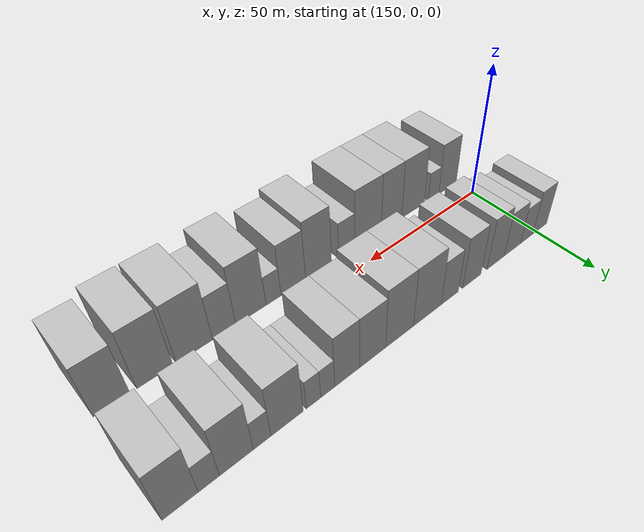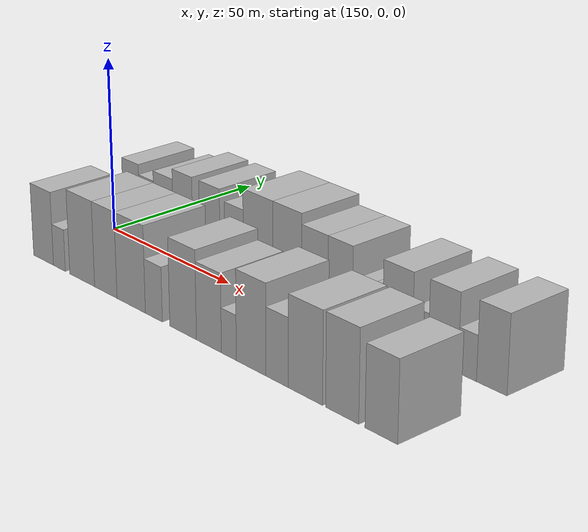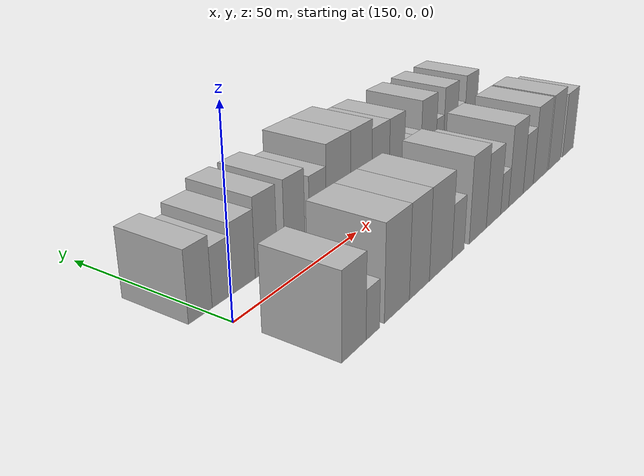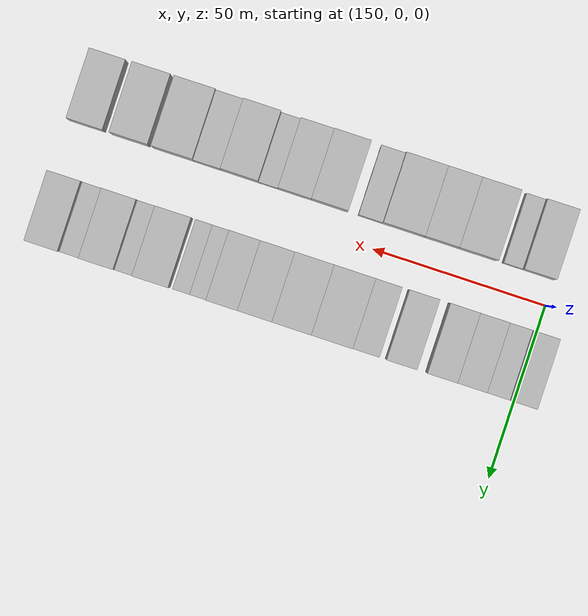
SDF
<sdf version="1.6">
 <world name="default">
  <model name="building_14">
   <static>1</static>
   <pose>148.1029 17.5000 0 0.000000 0.000000 1.570796</pose>
   <link name="link">
    <pose>0 0 9.00 0 0 0</pose>
    <collision name="collision"><geometry><box><size>20.0000 7.6957 18.0000</size></box></geometry></collision>
    <visual name="visual">
     <cast_shadows>0</cast_shadows>
     <geometry><box><size>20.0000 7.6957 18.0000</size></box></geometry>
     <material>
      <script>
       <uri>model://HANNAS_wall/materials/scripts</uri>
       <uri>model://HANNAS_wall/materials/textures</uri>
       <name>vrc/HANNAS_wall</name>
      </script>
     </material>
    </visual>
   </link>
  </model>
  <model name="building_15">
   <static>1</static>
   <pose>155.2797 17.5000 0 0.000000 0.000000 1.570796</pose>
   <link name="link">
    <pose>0 0 7.50 0 0 0</pose>
    <collision name="collision"><geometry><box><size>20.0000 6.6581 15.0000</size></box></geometry></collision>
    <visual name="visual">
     <cast_shadows>0</cast_shadows>
     <geometry><box><size>20.0000 6.6581 15.0000</size></box></geometry>
     <material>
      <script>
       <uri>model://HANNAS_wall/materials/scripts</uri>
       <uri>model://HANNAS_wall/materials/textures</uri>
       <name>vrc/HANNAS_wall</name>
      </script>
     </material>
    </visual>
   </link>
  </model>
  <model name="building_16">
   <static>1</static>
   <pose>162.8929 17.5000 0 0.000000 0.000000 1.570796</pose>
   <link name="link">
    <pose>0 0 9.00 0 0 0</pose>
    <collision name="collision"><geometry><box><size>20.0000 8.5683 18.0000</size></box></geometry></collision>
    <visual name="visual">
     <cast_shadows>0</cast_shadows>
     <geometry><box><size>20.0000 8.5683 18.0000</size></box></geometry>
     <material>
      <script>
       <uri>model://HANNAS_wall/materials/scripts</uri>
       <uri>model://HANNAS_wall/materials/textures</uri>
       <name>vrc/HANNAS_wall</name>
      </script>
     </material>
    </visual>
   </link>
  </model>
  <model name="building_17">
   <static>1</static>
   <pose>171.4461 17.5000 0 0.000000 0.000000 1.570796</pose>
   <link name="link">
    <pose>0 0 10.50 0 0 0</pose>
    <collision name="collision"><geometry><box><size>20.0000 8.5381 21.0000</size></box></geometry></collision>
    <visual name="visual">
     <cast_shadows>0</cast_shadows>
     <geometry><box><size>20.0000 8.5381 21.0000</size></box></geometry>
     <material>
      <script>
       <uri>model://HANNAS_wall/materials/scripts</uri>
       <uri>model://HANNAS_wall/materials/textures</uri>
       <name>vrc/HANNAS_wall</name>
      </script>
     </material>
    </visual>
   </link>
  </model>
  <model name="building_18">
   <static>1</static>
   <pose>183.0365 17.5000 0 0.000000 0.000000 1.570796</pose>
   <link name="link">
    <pose>0 0 10.50 0 0 0</pose>
    <collision name="collision"><geometry><box><size>20.0000 8.6428 21.0000</size></box></geometry></collision>
    <visual name="visual">
     <cast_shadows>0</cast_shadows>
     <geometry><box><size>20.0000 8.6428 21.0000</size></box></geometry>
     <material>
      <script>
       <uri>model://HANNAS_wall/materials/scripts</uri>
       <uri>model://HANNAS_wall/materials/textures</uri>
       <name>vrc/HANNAS_wall</name>
      </script>
     </material>
    </visual>
   </link>
  </model>
  <model name="building_19">
   <static>1</static>
   <pose>193.1942 17.5000 0 0.000000 0.000000 1.570796</pose>
   <link name="link">
    <pose>0 0 9.00 0 0 0</pose>
    <collision name="collision"><geometry><box><size>20.0000 7.6726 18.0000</size></box></geometry></collision>
    <visual name="visual">
     <cast_shadows>0</cast_shadows>
     <geometry><box><size>20.0000 7.6726 18.0000</size></box></geometry>
     <material>
      <script>
       <uri>model://HANNAS_wall/materials/scripts</uri>
       <uri>model://HANNAS_wall/materials/textures</uri>
       <name>vrc/HANNAS_wall</name>
      </script>
     </material>
    </visual>
   </link>
  </model>
  <model name="building_20">
   <static>1</static>
   <pose>202.9414 17.5000 0 0.000000 0.000000 1.570796</pose>
   <link name="link">
    <pose>0 0 12.00 0 0 0</pose>
    <collision name="collision"><geometry><box><size>20.0000 11.8218 24.0000</size></box></geometry></collision>
    <visual name="visual">
     <cast_shadows>0</cast_shadows>
     <geometry><box><size>20.0000 11.8218 24.0000</size></box></geometry>
     <material>
      <script>
       <uri>model://HANNAS_wall/materials/scripts</uri>
       <uri>model://HANNAS_wall/materials/textures</uri>
       <name>vrc/HANNAS_wall</name>
      </script>
     </material>
    </visual>
   </link>
  </model>
  <model name="building_21">
   <static>1</static>
   <pose>214.4415 17.5000 0 0.000000 0.000000 1.570796</pose>
   <link name="link">
    <pose>0 0 12.00 0 0 0</pose>
    <collision name="collision"><geometry><box><size>20.0000 11.1784 24.0000</size></box></geometry></collision>
    <visual name="visual">
     <cast_shadows>0</cast_shadows>
     <geometry><box><size>20.0000 11.1784 24.0000</size></box></geometry>
     <material>
      <script>
       <uri>model://HANNAS_wall/materials/scripts</uri>
       <uri>model://HANNAS_wall/materials/textures</uri>
       <name>vrc/HANNAS_wall</name>
      </script>
     </material>
    </visual>
   </link>
  </model>
  <model name="building_22">
   <static>1</static>
   <pose>224.9569 17.5000 0 0.000000 0.000000 1.570796</pose>
   <link name="link">
    <pose>0 0 10.50 0 0 0</pose>
    <collision name="collision"><geometry><box><size>20.0000 9.8526 21.0000</size></box></geometry></collision>
    <visual name="visual">
     <cast_shadows>0</cast_shadows>
     <geometry><box><size>20.0000 9.8526 21.0000</size></box></geometry>
     <material>
      <script>
       <uri>model://HANNAS_wall/materials/scripts</uri>
       <uri>model://HANNAS_wall/materials/textures</uri>
       <name>vrc/HANNAS_wall</name>
      </script>
     </material>
    </visual>
   </link>
  </model>
  <model name="building_23">
   <static>1</static>
   <pose>234.3726 17.5000 0 0.000000 0.000000 1.570796</pose>
   <link name="link">
    <pose>0 0 10.50 0 0 0</pose>
    <collision name="collision"><geometry><box><size>20.0000 8.9788 21.0000</size></box></geometry></collision>
    <visual name="visual">
     <cast_shadows>0</cast_shadows>
     <geometry><box><size>20.0000 8.9788 21.0000</size></box></geometry>
     <material>
      <script>
       <uri>model://HANNAS_wall/materials/scripts</uri>
       <uri>model://HANNAS_wall/materials/textures</uri>
       <name>vrc/HANNAS_wall</name>
      </script>
     </material>
    </visual>
   </link>
  </model>
  <model name="building_24">
   <static>1</static>
   <pose>241.2950 17.5000 0 0.000000 0.000000 1.570796</pose>
   <link name="link">
    <pose>0 0 6.00 0 0 0</pose>
    <collision name="collision"><geometry><box><size>20.0000 4.8659 12.0000</size></box></geometry></collision>
    <visual name="visual">
     <cast_shadows>0</cast_shadows>
     <geometry><box><size>20.0000 4.8659 12.0000</size></box></geometry>
     <material>
      <script>
       <uri>model://HANNAS_wall/materials/scripts</uri>
       <uri>model://HANNAS_wall/materials/textures</uri>
       <name>vrc/HANNAS_wall</name>
      </script>
     </material>
    </visual>
   </link>
  </model>
  <model name="building_25">
   <static>1</static>
   <pose>246.1628 17.5000 0 0.000000 0.000000 1.570796</pose>
   <link name="link">
    <pose>0 0 6.00 0 0 0</pose>
    <collision name="collision"><geometry><box><size>20.0000 4.8697 12.0000</size></box></geometry></collision>
    <visual name="visual">
     <cast_shadows>0</cast_shadows>
     <geometry><box><size>20.0000 4.8697 12.0000</size></box></geometry>
     <material>
      <script>
       <uri>model://HANNAS_wall/materials/scripts</uri>
       <uri>model://HANNAS_wall/materials/textures</uri>
       <name>vrc/HANNAS_wall</name>
      </script>
     </material>
    </visual>
   </link>
  </model>
  <model name="building_26">
   <static>1</static>
   <pose>254.7649 17.5000 0 0.000000 0.000000 1.570796</pose>
   <link name="link">
    <pose>0 0 10.50 0 0 0</pose>
    <collision name="collision"><geometry><box><size>20.0000 10.3346 21.0000</size></box></geometry></collision>
    <visual name="visual">
     <cast_shadows>0</cast_shadows>
     <geometry><box><size>20.0000 10.3346 21.0000</size></box></geometry>
     <material>
      <script>
       <uri>model://HANNAS_wall/materials/scripts</uri>
       <uri>model://HANNAS_wall/materials/textures</uri>
       <name>vrc/HANNAS_wall</name>
      </script>
     </material>
    </visual>
   </link>
  </model>
  <model name="building_27">
   <static>1</static>
   <pose>262.5951 17.5000 0 0.000000 0.000000 1.570796</pose>
   <link name="link">
    <pose>0 0 6.00 0 0 0</pose>
    <collision name="collision"><geometry><box><size>20.0000 5.3257 12.0000</size></box></geometry></collision>
    <visual name="visual">
     <cast_shadows>0</cast_shadows>
     <geometry><box><size>20.0000 5.3257 12.0000</size></box></geometry>
     <material>
      <script>
       <uri>model://HANNAS_wall/materials/scripts</uri>
       <uri>model://HANNAS_wall/materials/textures</uri>
       <name>vrc/HANNAS_wall</name>
      </script>
     </material>
    </visual>
   </link>
  </model>
  <model name="building_28">
   <static>1</static>
   <pose>270.2034 17.5000 0 0.000000 0.000000 1.570796</pose>
   <link name="link">
    <pose>0 0 10.50 0 0 0</pose>
    <collision name="collision"><geometry><box><size>20.0000 9.8911 21.0000</size></box></geometry></collision>
    <visual name="visual">
     <cast_shadows>0</cast_shadows>
     <geometry><box><size>20.0000 9.8911 21.0000</size></box></geometry>
     <material>
      <script>
       <uri>model://HANNAS_wall/materials/scripts</uri>
       <uri>model://HANNAS_wall/materials/textures</uri>
       <name>vrc/HANNAS_wall</name>
      </script>
     </material>
    </visual>
   </link>
  </model>
  <model name="building_29">
   <static>1</static>
   <pose>278.0984 17.5000 0 0.000000 0.000000 1.570796</pose>
   <link name="link">
    <pose>0 0 6.00 0 0 0</pose>
    <collision name="collision"><geometry><box><size>20.0000 5.8989 12.0000</size></box></geometry></collision>
    <visual name="visual">
     <cast_shadows>0</cast_shadows>
     <geometry><box><size>20.0000 5.8989 12.0000</size></box></geometry>
     <material>
      <script>
       <uri>model://HANNAS_wall/materials/scripts</uri>
       <uri>model://HANNAS_wall/materials/textures</uri>
       <name>vrc/HANNAS_wall</name>
      </script>
     </material>
    </visual>
   </link>
  </model>
  <model name="building_30">
   <static>1</static>
   <pose>285.8414 17.5000 0 0.000000 0.000000 1.570796</pose>
   <link name="link">
    <pose>0 0 10.50 0 0 0</pose>
    <collision name="collision"><geometry><box><size>20.0000 9.5870 21.0000</size></box></geometry></collision>
    <visual name="visual">
     <cast_shadows>0</cast_shadows>
     <geometry><box><size>20.0000 9.5870 21.0000</size></box></geometry>
     <material>
      <script>
       <uri>model://HANNAS_wall/materials/scripts</uri>
       <uri>model://HANNAS_wall/materials/textures</uri>
       <name>vrc/HANNAS_wall</name>
      </script>
     </material>
    </visual>
   </link>
  </model>
  <model name="building_46">
   <static>1</static>
   <pose>154.9749 -17.5000 0 0.000000 0.000000 1.570796</pose>
   <link name="link">
    <pose>0 0 10.50 0 0 0</pose>
    <collision name="collision"><geometry><box><size>20.0000 9.2919 21.0000</size></box></geometry></collision>
    <visual name="visual">
     <cast_shadows>0</cast_shadows>
     <geometry><box><size>20.0000 9.2919 21.0000</size></box></geometry>
     <material>
      <script>
       <uri>model://HANNAS_wall/materials/scripts</uri>
       <uri>model://HANNAS_wall/materials/textures</uri>
       <name>vrc/HANNAS_wall</name>
      </script>
     </material>
    </visual>
   </link>
  </model>
  <model name="building_47">
   <static>1</static>
   <pose>162.3523 -17.5000 0 0.000000 0.000000 1.570796</pose>
   <link name="link">
    <pose>0 0 6.00 0 0 0</pose>
    <collision name="collision"><geometry><box><size>20.0000 5.4629 12.0000</size></box></geometry></collision>
    <visual name="visual">
     <cast_shadows>0</cast_shadows>
     <geometry><box><size>20.0000 5.4629 12.0000</size></box></geometry>
     <material>
      <script>
       <uri>model://HANNAS_wall/materials/scripts</uri>
       <uri>model://HANNAS_wall/materials/textures</uri>
       <name>vrc/HANNAS_wall</name>
      </script>
     </material>
    </visual>
   </link>
  </model>
  <model name="building_48">
   <static>1</static>
   <pose>172.6568 -17.5000 0 0.000000 0.000000 1.570796</pose>
   <link name="link">
    <pose>0 0 12.00 0 0 0</pose>
    <collision name="collision"><geometry><box><size>20.0000 11.1460 24.0000</size></box></geometry></collision>
    <visual name="visual">
     <cast_shadows>0</cast_shadows>
     <geometry><box><size>20.0000 11.1460 24.0000</size></box></geometry>
     <material>
      <script>
       <uri>model://HANNAS_wall/materials/scripts</uri>
       <uri>model://HANNAS_wall/materials/textures</uri>
       <name>vrc/HANNAS_wall</name>
      </script>
     </material>
    </visual>
   </link>
  </model>
  <model name="building_49">
   <static>1</static>
   <pose>183.0780 -17.5000 0 0.000000 0.000000 1.570796</pose>
   <link name="link">
    <pose>0 0 12.00 0 0 0</pose>
    <collision name="collision"><geometry><box><size>20.0000 9.6966 24.0000</size></box></geometry></collision>
    <visual name="visual">
     <cast_shadows>0</cast_shadows>
     <geometry><box><size>20.0000 9.6966 24.0000</size></box></geometry>
     <material>
      <script>
       <uri>model://HANNAS_wall/materials/scripts</uri>
       <uri>model://HANNAS_wall/materials/textures</uri>
       <name>vrc/HANNAS_wall</name>
      </script>
     </material>
    </visual>
   </link>
  </model>
  <model name="building_50">
   <static>1</static>
   <pose>193.8861 -17.5000 0 0.000000 0.000000 1.570796</pose>
   <link name="link">
    <pose>0 0 12.00 0 0 0</pose>
    <collision name="collision"><geometry><box><size>20.0000 11.9195 24.0000</size></box></geometry></collision>
    <visual name="visual">
     <cast_shadows>0</cast_shadows>
     <geometry><box><size>20.0000 11.9195 24.0000</size></box></geometry>
     <material>
      <script>
       <uri>model://HANNAS_wall/materials/scripts</uri>
       <uri>model://HANNAS_wall/materials/textures</uri>
       <name>vrc/HANNAS_wall</name>
      </script>
     </material>
    </visual>
   </link>
  </model>
  <model name="building_51">
   <static>1</static>
   <pose>203.3191 -17.5000 0 0.000000 0.000000 1.570796</pose>
   <link name="link">
    <pose>0 0 7.50 0 0 0</pose>
    <collision name="collision"><geometry><box><size>20.0000 6.9467 15.0000</size></box></geometry></collision>
    <visual name="visual">
     <cast_shadows>0</cast_shadows>
     <geometry><box><size>20.0000 6.9467 15.0000</size></box></geometry>
     <material>
      <script>
       <uri>model://HANNAS_wall/materials/scripts</uri>
       <uri>model://HANNAS_wall/materials/textures</uri>
       <name>vrc/HANNAS_wall</name>
      </script>
     </material>
    </visual>
   </link>
  </model>
  <model name="building_52">
   <static>1</static>
   <pose>215.0579 -17.5000 0 0.000000 0.000000 1.570796</pose>
   <link name="link">
    <pose>0 0 12.00 0 0 0</pose>
    <collision name="collision"><geometry><box><size>20.0000 10.5309 24.0000</size></box></geometry></collision>
    <visual name="visual">
     <cast_shadows>0</cast_shadows>
     <geometry><box><size>20.0000 10.5309 24.0000</size></box></geometry>
     <material>
      <script>
       <uri>model://HANNAS_wall/materials/scripts</uri>
       <uri>model://HANNAS_wall/materials/textures</uri>
       <name>vrc/HANNAS_wall</name>
      </script>
     </material>
    </visual>
   </link>
  </model>
  <model name="building_53">
   <static>1</static>
   <pose>225.0975 -17.5000 0 0.000000 0.000000 1.570796</pose>
   <link name="link">
    <pose>0 0 10.50 0 0 0</pose>
    <collision name="collision"><geometry><box><size>20.0000 9.5483 21.0000</size></box></geometry></collision>
    <visual name="visual">
     <cast_shadows>0</cast_shadows>
     <geometry><box><size>20.0000 9.5483 21.0000</size></box></geometry>
     <material>
      <script>
       <uri>model://HANNAS_wall/materials/scripts</uri>
       <uri>model://HANNAS_wall/materials/textures</uri>
       <name>vrc/HANNAS_wall</name>
      </script>
     </material>
    </visual>
   </link>
  </model>
  <model name="building_54">
   <static>1</static>
   <pose>232.6678 -17.5000 0 0.000000 0.000000 1.570796</pose>
   <link name="link">
    <pose>0 0 6.00 0 0 0</pose>
    <collision name="collision"><geometry><box><size>20.0000 5.5923 12.0000</size></box></geometry></collision>
    <visual name="visual">
     <cast_shadows>0</cast_shadows>
     <geometry><box><size>20.0000 5.5923 12.0000</size></box></geometry>
     <material>
      <script>
       <uri>model://HANNAS_wall/materials/scripts</uri>
       <uri>model://HANNAS_wall/materials/textures</uri>
       <name>vrc/HANNAS_wall</name>
      </script>
     </material>
    </visual>
   </link>
  </model>
  <model name="building_55">
   <static>1</static>
   <pose>240.8522 -17.5000 0 0.000000 0.000000 1.570796</pose>
   <link name="link">
    <pose>0 0 12.00 0 0 0</pose>
    <collision name="collision"><geometry><box><size>20.0000 10.7766 24.0000</size></box></geometry></collision>
    <visual name="visual">
     <cast_shadows>0</cast_shadows>
     <geometry><box><size>20.0000 10.7766 24.0000</size></box></geometry>
     <material>
      <script>
       <uri>model://HANNAS_wall/materials/scripts</uri>
       <uri>model://HANNAS_wall/materials/textures</uri>
       <name>vrc/HANNAS_wall</name>
      </script>
     </material>
    </visual>
   </link>
  </model>
  <model name="building_56">
   <static>1</static>
   <pose>250.1936 -17.5000 0 0.000000 0.000000 1.570796</pose>
   <link name="link">
    <pose>0 0 9.00 0 0 0</pose>
    <collision name="collision"><geometry><box><size>20.0000 7.9061 18.0000</size></box></geometry></collision>
    <visual name="visual">
     <cast_shadows>0</cast_shadows>
     <geometry><box><size>20.0000 7.9061 18.0000</size></box></geometry>
     <material>
      <script>
       <uri>model://HANNAS_wall/materials/scripts</uri>
       <uri>model://HANNAS_wall/materials/textures</uri>
       <name>vrc/HANNAS_wall</name>
      </script>
     </material>
    </visual>
   </link>
  </model>
  <model name="building_57">
   <static>1</static>
   <pose>260.0205 -17.5000 0 0.000000 0.000000 1.570796</pose>
   <link name="link">
    <pose>0 0 12.00 0 0 0</pose>
    <collision name="collision"><geometry><box><size>20.0000 11.7476 24.0000</size></box></geometry></collision>
    <visual name="visual">
     <cast_shadows>0</cast_shadows>
     <geometry><box><size>20.0000 11.7476 24.0000</size></box></geometry>
     <material>
      <script>
       <uri>model://HANNAS_wall/materials/scripts</uri>
       <uri>model://HANNAS_wall/materials/textures</uri>
       <name>vrc/HANNAS_wall</name>
      </script>
     </material>
    </visual>
   </link>
  </model>
  <model name="building_58">
   <static>1</static>
   <pose>272.3598 -17.5000 0 0.000000 0.000000 1.570796</pose>
   <link name="link">
    <pose>0 0 12.00 0 0 0</pose>
    <collision name="collision"><geometry><box><size>20.0000 10.9312 24.0000</size></box></geometry></collision>
    <visual name="visual">
     <cast_shadows>0</cast_shadows>
     <geometry><box><size>20.0000 10.9312 24.0000</size></box></geometry>
     <material>
      <script>
       <uri>model://HANNAS_wall/materials/scripts</uri>
       <uri>model://HANNAS_wall/materials/textures</uri>
       <name>vrc/HANNAS_wall</name>
      </script>
     </material>
    </visual>
   </link>
  </model>
  <model name="building_59">
   <static>1</static>
   <pose>284.9914 -17.5000 0 0.000000 0.000000 1.570796</pose>
   <link name="link">
    <pose>0 0 10.50 0 0 0</pose>
    <collision name="collision"><geometry><box><size>20.0000 10.3320 21.0000</size></box></geometry></collision>
    <visual name="visual">
     <cast_shadows>0</cast_shadows>
     <geometry><box><size>20.0000 10.3320 21.0000</size></box></geometry>
     <material>
      <script>
       <uri>model://HANNAS_wall/materials/scripts</uri>
       <uri>model://HANNAS_wall/materials/textures</uri>
       <name>vrc/HANNAS_wall</name>
      </script>
     </material>
    </visual>
   </link>
  </model>
 </world>
</sdf>
